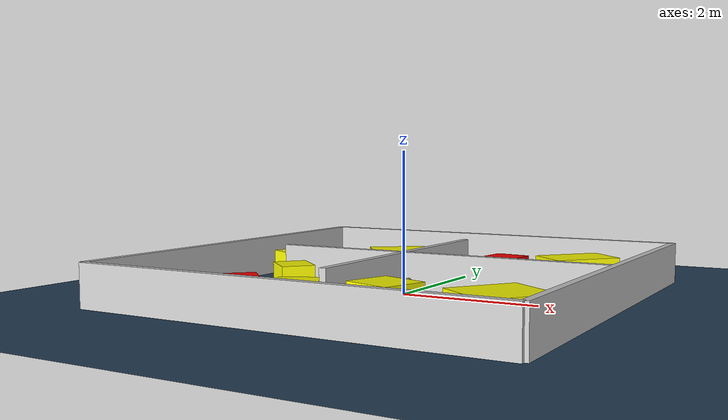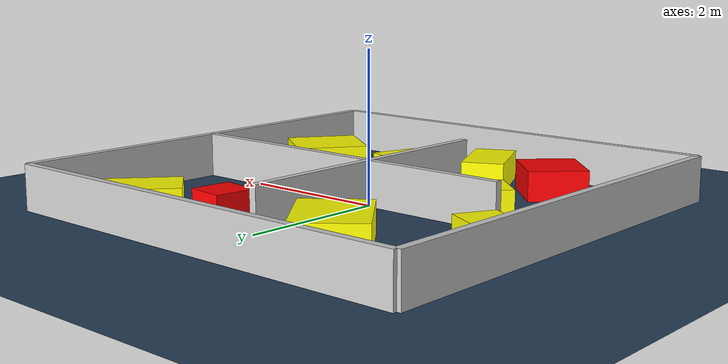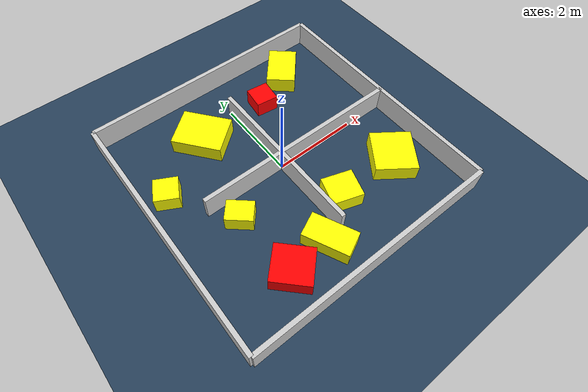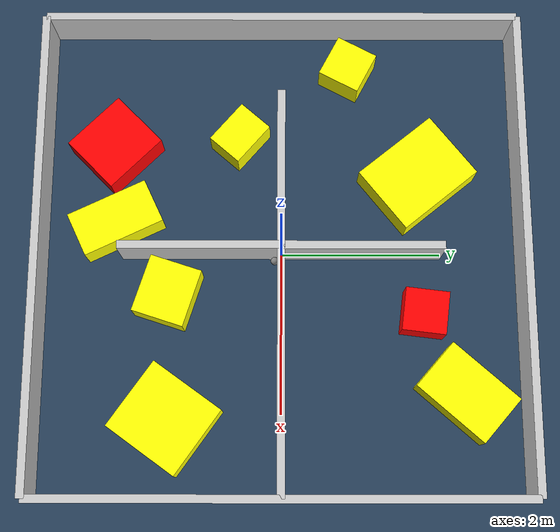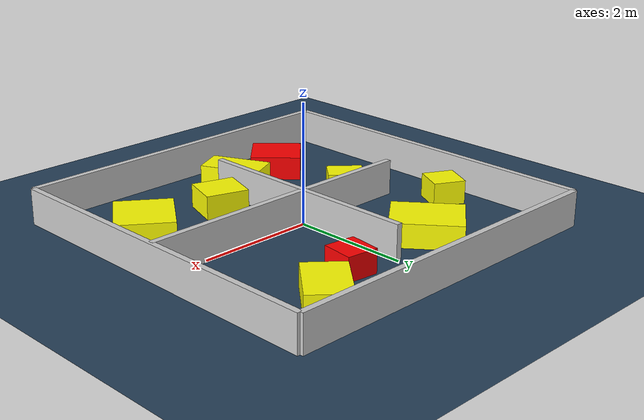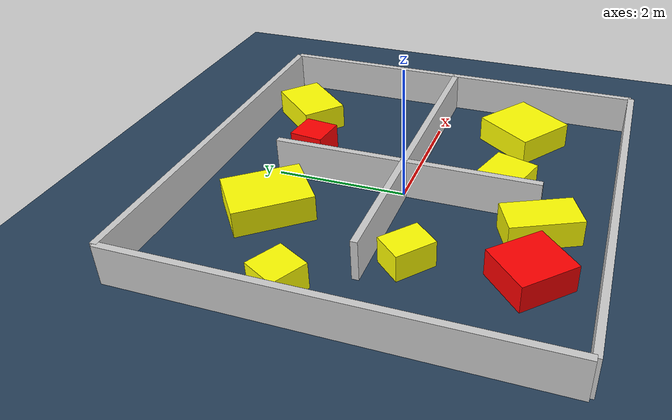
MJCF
<?xml version="1.0" ?>
<mujoco model="generated_environment">
  <option timestep="0.01" integrator="RK4" cone="elliptic"/>
  <default>
    <geom density="1"/>
  </default>
  <asset>
    <texture builtin="gradient" height="3072" rgb1="0.3 0.5 0.7" rgb2="0 0 0" type="skybox" width="512"/>
    <texture builtin="checker" height="300" mark="edge" markrgb="0.8 0.8 0.8" name="groundplane" rgb1="0.2 0.3 0.4" rgb2="0.1 0.2 0.3" type="2d" width="300"/>
    <material name="groundplane" reflectance="0.2" texrepeat="5 5" texture="groundplane" texuniform="true"/>
    <material name="robot" rgba="0.0 1.0 0.0 1"/>
  </asset>
  <worldbody>
    <light dir="0 0 -1" directional="true" pos="0 0 1.5"/>
    <geom condim="4" friction="1.0 0.005 0.001" material="groundplane" name="floor" size="0 0 0.05" type="plane"/>
    <body name="walls">
      <geom name="wall_1" condim="4" pos="-3.0 0.0 0.3" rgba="0.800000011920929 0.800000011920929 0.800000011920929 1.0" size="0.05 3.0 0.3" type="box"/>
      <geom name="wall_2" condim="4" pos="3.0 0.0 0.3" rgba="0.800000011920929 0.800000011920929 0.800000011920929 1.0" size="0.05 3.0 0.3" type="box"/>
      <geom name="wall_3" condim="4" pos="0.0 -3.0 0.3" rgba="0.800000011920929 0.800000011920929 0.800000011920929 1.0" size="3.0 0.05 0.3" type="box"/>
      <geom name="wall_4" condim="4" pos="0.0 3.0 0.3" rgba="0.800000011920929 0.800000011920929 0.800000011920929 1.0" size="3.0 0.05 0.3" type="box"/>
      <geom name="wall_5" condim="4" pos="1.5 0.0 0.3" rgba="0.800000011920929 0.800000011920929 0.800000011920929 1.0" size="1.5 0.05 0.3" type="box"/>
      <geom name="wall_6" condim="4" pos="-1.0 0.0 0.3" rgba="0.800000011920929 0.800000011920929 0.800000011920929 1.0" size="1.0 0.05 0.3" type="box"/>
      <geom name="wall_7" condim="4" pos="0.0 -1.0 0.3" rgba="0.800000011920929 0.800000011920929 0.800000011920929 1.0" size="0.05 1.0 0.3" type="box"/>
      <geom name="wall_8" condim="4" pos="0.0 1.0 0.3" rgba="0.800000011920929 0.800000011920929 0.800000011920929 1.0" size="0.05 1.0 0.3" type="box"/>
    </body>
    <body name="robot">
      <joint name="joint_x" type="slide" pos="0 0 0" axis="1 0 0"/>
      <joint name="joint_y" type="slide" pos="0 0 0" axis="0 1 0"/>
      <geom name="robot" type="sphere" pos="0.11691766076419485 -0.08051187680311811 0.2" size="0.05" mass="5." friction="1.0 0.005 0.0001" condim="4"/>
      <site name="sensor_ball"/>
    </body>
    <body name="obstacle_1_movable">
      <geom name="obstacle_1_movable" condim="4" pos="1.760040661172447 2.2428918802701467 0.2" euler="0 0 138.98270237805343" friction="1.0 0.005 0.001" rgba="1 1 0 1" size="0.347205286927709 0.5215792069029486 0.2" type="box" mass="0.1"/>
      <joint type="free"/>
    </body>
    <body name="obstacle_2_movable">
      <geom name="obstacle_2_movable" condim="4" pos="2.065676448260633 -1.3967234470832504 0.2" euler="0 0 144.40152593045119" friction="1.0 0.005 0.001" rgba="1 1 0 1" size="0.4767577901470178 0.5058487261660267 0.2" type="box" mass="0.1"/>
      <joint type="free"/>
    </body>
    <body name="obstacle_3_static">
      <geom name="obstacle_3_static" condim="4" pos="-1.3799559173140743 -2.0991817502768613 0.2" euler="0 0 134.70486643692166" friction="1.0 0.005 0.001" rgba="1 0 0 1" size="0.4309732805893587 0.3998613691839418 0.2" type="box"/>
    </body>
    <body name="obstacle_4_static">
      <geom name="obstacle_4_static" condim="4" pos="0.7745410753353363 1.762045968083263 0.2" euler="0 0 353.03331991422687" friction="1.0 0.005 0.001" rgba="1 0 0 1" size="0.2650291984041261 0.26978969346633136 0.2" type="box"/>
    </body>
    <body name="obstacle_5_movable">
      <geom name="obstacle_5_movable" condim="4" pos="-2.432898959224109 0.8513839411348876 0.2" euler="0 0 242.11298438662178" friction="1.0 0.005 0.001" rgba="1 1 0 1" size="0.2727712446683621 0.27407299123486173 0.2" type="box" mass="0.1"/>
      <joint type="free"/>
    </body>
    <body name="obstacle_6_movable">
      <geom name="obstacle_6_movable" condim="4" pos="0.5269487628120877 -1.4000074609744464 0.2" euler="0 0 72.08772637328872" friction="1.0 0.005 0.001" rgba="1 1 0 1" size="0.3300908909366962 0.3632749464287762 0.2" type="box" mass="0.1"/>
      <joint type="free"/>
    </body>
    <body name="obstacle_7_movable">
      <geom name="obstacle_7_movable" condim="4" pos="-0.982559132207184 1.7118617870753594 0.2" euler="0 0 308.70979259119184" friction="1.0 0.005 0.001" rgba="1 1 0 1" size="0.5822533492773156 0.4588907306410895 0.2" type="box" mass="0.1"/>
      <joint type="free"/>
    </body>
    <body name="obstacle_8_movable">
      <geom name="obstacle_8_movable" condim="4" pos="-1.5040804722333077 -0.5230394191184287 0.2" euler="0 0 319.08327277555" friction="1.0 0.005 0.001" rgba="1 1 0 1" size="0.3030987998298217 0.2357571765869643 0.2" type="box" mass="0.1"/>
      <joint type="free"/>
    </body>
    <body name="obstacle_9_movable">
      <geom name="obstacle_9_movable" condim="4" pos="-0.3912252631047082 -2.0620812536760367 0.2" euler="0 0 295.34599957334154" friction="1.0 0.005 0.001" rgba="1 1 0 1" size="0.5240636085715902 0.28478857353986325 0.2" type="box" mass="0.1"/>
      <joint type="free"/>
    </body>
  </worldbody>
  <actuator>
    <motor name="actuator_x" joint="joint_x" gear="1" ctrlrange="-1 1"/>
    <motor name="actuator_y" joint="joint_y" gear="1" ctrlrange="-1 1"/>
  </actuator>
</mujoco>
